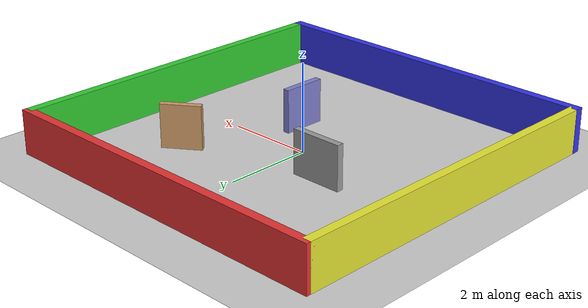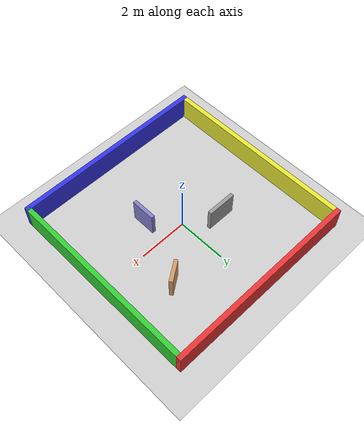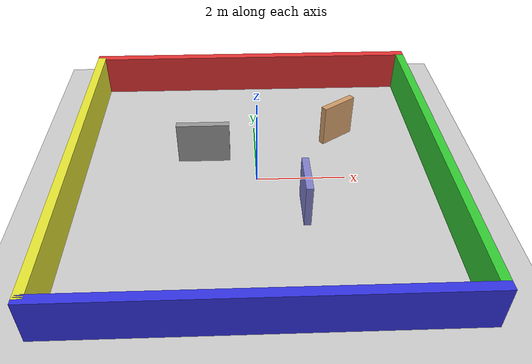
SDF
<?xml version="1.0" ?>
<sdf version="1.6">
  <world name="default">

    <!-- Physics nhẹ -->
    <physics name="physics" type="ode">
      <max_step_size>0.002</max_step_size>
      <real_time_update_rate>500</real_time_update_rate>
      <real_time_factor>1.0</real_time_factor>
    </physics>

    <!-- Ánh sáng nhẹ (để thấy màu) -->
    <light name="soft_light" type="directional">
      <cast_shadows>false</cast_shadows>
      <pose>0 0 10 0 0 0</pose>
      <diffuse>0.6 0.6 0.6 1</diffuse>
      <specular>0.1 0.1 0.1 1</specular>
      <direction>-0.3 0.1 -1</direction>
    </light>

    <!-- Ground -->
    <model name="ground_plane">
      <static>true</static>
      <link name="link">
        <collision name="collision">
          <geometry>
            <plane>
              <normal>0 0 1</normal>
              <size>12 12</size>
            </plane>
          </geometry>
        </collision>
        <visual name="visual">
          <geometry>
            <plane>
              <normal>0 0 1</normal>
              <size>12 12</size>
            </plane>
          </geometry>
        </visual>
      </link>
    </model>

    <!-- NORTH - Đỏ -->
    <model name="wall_north">
      <static>true</static>
      <pose>0 4 0.5 0 0 0</pose>
      <link name="link">
        <collision name="collision">
          <geometry><box><size>8.2 0.2 1.0</size></box></geometry>
        </collision>
        <visual name="visual">
          <geometry><box><size>8.2 0.2 1.0</size></box></geometry>
          <material>
            <ambient>0.8 0.1 0.1 1</ambient>
            <diffuse>0.9 0.2 0.2 1</diffuse>
          </material>
        </visual>
      </link>
    </model>

    <!-- SOUTH - Xanh dương -->
    <model name="wall_south">
      <static>true</static>
      <pose>0 -4 0.5 0 0 0</pose>
      <link name="link">
        <collision name="collision">
          <geometry><box><size>8.2 0.2 1.0</size></box></geometry>
        </collision>
        <visual name="visual">
          <geometry><box><size>8.2 0.2 1.0</size></box></geometry>
          <material>
            <ambient>0.1 0.1 0.8 1</ambient>
            <diffuse>0.2 0.2 0.9 1</diffuse>
          </material>
        </visual>
      </link>
    </model>

    <!-- EAST - Xanh lá -->
    <model name="wall_east">
      <static>true</static>
      <pose>4 0 0.5 0 0 0</pose>
      <link name="link">
        <collision name="collision">
          <geometry><box><size>0.2 8.0 1.0</size></box></geometry>
        </collision>
        <visual name="visual">
          <geometry><box><size>0.2 8.0 1.0</size></box></geometry>
          <material>
            <ambient>0.1 0.6 0.1 1</ambient>
            <diffuse>0.2 0.8 0.2 1</diffuse>
          </material>
        </visual>
      </link>
    </model>

    <!-- WEST - Vàng -->
    <model name="wall_west">
      <static>true</static>
      <pose>-4 0 0.5 0 0 0</pose>
      <link name="link">
        <collision name="collision">
          <geometry><box><size>0.2 8.0 1.0</size></box></geometry>
        </collision>
        <visual name="visual">
          <geometry><box><size>0.2 8.0 1.0</size></box></geometry>
          <material>
            <ambient>0.8 0.8 0.1 1</ambient>
            <diffuse>0.9 0.9 0.2 1</diffuse>
          </material>
        </visual>
      </link>
    </model>

    <!-- Vật cản nhỏ 1 -->
    <model name="small_wall_1">
      <static>true</static>
      <pose>-1.2 0.8 0.5 0 0 0</pose>
      <link name="link">
        <collision name="collision">
          <geometry><box><size>1.2 0.15 1.0</size></box></geometry>
        </collision>
        <visual name="visual">
          <geometry><box><size>1.2 0.15 1.0</size></box></geometry>
          <material>
            <ambient>0.5 0.5 0.5 1</ambient>
            <diffuse>0.6 0.6 0.6 1</diffuse>
          </material>
        </visual>
      </link>
    </model>

    <!-- Vật cản nhỏ 2 -->
    <model name="small_wall_2">
      <static>true</static>
      <pose>1.0 -1.0 0.5 0 0 1.57</pose>
      <link name="link">
        <collision name="collision">
          <geometry><box><size>1.0 0.15 1.0</size></box></geometry>
        </collision>
        <visual name="visual">
          <geometry><box><size>1.0 0.15 1.0</size></box></geometry>
          <material>
            <ambient>0.4 0.4 0.7 1</ambient>
            <diffuse>0.5 0.5 0.8 1</diffuse>
          </material>
        </visual>
      </link>
    </model>

    <!-- Vật cản nhỏ 3 -->
    <model name="small_wall_3">
      <static>true</static>
      <pose>2.0 1.6 0.5 0 0 0.6</pose>
      <link name="link">
        <collision name="collision">
          <geometry><box><size>0.9 0.15 1.0</size></box></geometry>
        </collision>
        <visual name="visual">
          <geometry><box><size>0.9 0.15 1.0</size></box></geometry>
          <material>
            <ambient>0.7 0.5 0.3 1</ambient>
            <diffuse>0.8 0.6 0.4 1</diffuse>
          </material>
        </visual>
      </link>
    </model>

    <!-- Camera -->
    <gui fullscreen="0">
      <camera name="user_camera">
        <pose>0 -6.5 5 0 0.65 1.57</pose>
        <view_controller>orbit</view_controller>
      </camera>
    </gui>

  </world>
</sdf>
